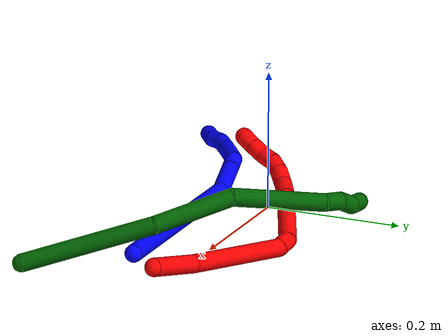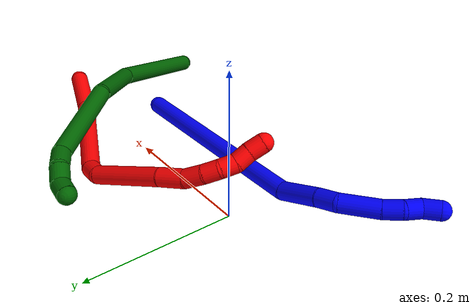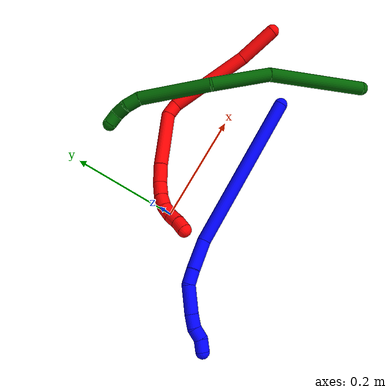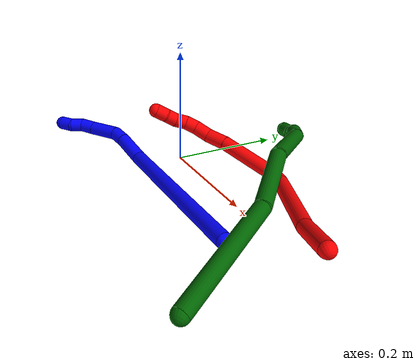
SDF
<sdf version="1.7">
 <world name="default">
  <model name="1">
   <static>0</static>
   <link name="1">
    <collision name="collision-cylinder-e_1_1_4">
     <pose>-0.093736 -0.003088 -0.113009 3.11428 -0.692261 -3.06588</pose>
     <geometry><cylinder><radius>0.0125</radius><length>0.293713</length></cylinder></geometry>
     <surface>
      <friction><ode><mu>1.16</mu><mu2>1.16</mu2><slip1>0</slip1><slip2>0</slip2></ode></friction>
      <contact><ode><kp>1e+06</kp><kd>1</kd><max_vel>0</max_vel><min_depth>0.001</min_depth></ode></contact>
     </surface>
    </collision>
    <visual name="visual-cylinder-e_1_1_4">
     <pose>-0.093736 -0.003088 -0.113009 3.11428 -0.692261 -3.06588</pose>
     <geometry><cylinder><radius>0.0125</radius><length>0.293713</length></cylinder></geometry>
     <material><ambient>0 0 1 1</ambient></material>
    </visual>
    <collision name="collision-cylinder-e_2_4_5">
     <pose>-0.211176 -0.001875 -0.241875 -2.87675 -0.964704 2.64337</pose>
     <geometry><cylinder><radius>0.0125</radius><length>0.057684</length></cylinder></geometry>
     <surface>
      <friction><ode><mu>1.16</mu><mu2>1.16</mu2><slip1>0</slip1><slip2>0</slip2></ode></friction>
      <contact><ode><kp>1e+06</kp><kd>1</kd><max_vel>0</max_vel><min_depth>0.001</min_depth></ode></contact>
     </surface>
    </collision>
    <visual name="visual-cylinder-e_2_4_5">
     <pose>-0.211176 -0.001875 -0.241875 -2.87675 -0.964704 2.64337</pose>
     <geometry><cylinder><radius>0.0125</radius><length>0.057684</length></cylinder></geometry>
     <material><ambient>0 0 1 1</ambient></material>
    </visual>
    <collision name="collision-cylinder-e_3_5_6">
     <pose>-0.246309 0.002847 -0.265511 -3.08748 -0.97254 3.03929</pose>
     <geometry><cylinder><radius>0.0125</radius><length>0.027662</length></cylinder></geometry>
     <surface>
      <friction><ode><mu>1.16</mu><mu2>1.16</mu2><slip1>0</slip1><slip2>0</slip2></ode></friction>
      <contact><ode><kp>1e+06</kp><kd>1</kd><max_vel>0</max_vel><min_depth>0.001</min_depth></ode></contact>
     </surface>
    </collision>
    <visual name="visual-cylinder-e_3_5_6">
     <pose>-0.246309 0.002847 -0.265511 -3.08748 -0.97254 3.03929</pose>
     <geometry><cylinder><radius>0.0125</radius><length>0.027662</length></cylinder></geometry>
     <material><ambient>0 0 1 1</ambient></material>
    </visual>
    <collision name="collision-cylinder-e_4_6_7">
     <pose>-0.281293 -0.004279 -0.280848 2.35694 -1.14503 -2.00014</pose>
     <geometry><cylinder><radius>0.0125</radius><length>0.051726</length></cylinder></geometry>
     <surface>
      <friction><ode><mu>1.16</mu><mu2>1.16</mu2><slip1>0</slip1><slip2>0</slip2></ode></friction>
      <contact><ode><kp>1e+06</kp><kd>1</kd><max_vel>0</max_vel><min_depth>0.001</min_depth></ode></contact>
     </surface>
    </collision>
    <visual name="visual-cylinder-e_4_6_7">
     <pose>-0.281293 -0.004279 -0.280848 2.35694 -1.14503 -2.00014</pose>
     <geometry><cylinder><radius>0.0125</radius><length>0.051726</length></cylinder></geometry>
     <material><ambient>0 0 1 1</ambient></material>
    </visual>
    <collision name="collision-cylinder-e_5_7_8">
     <pose>-0.316843 -0.014987 -0.29062 2.18174 -1.25968 -1.90128</pose>
     <geometry><cylinder><radius>0.0125</radius><length>0.025202</length></cylinder></geometry>
     <surface>
      <friction><ode><mu>1.16</mu><mu2>1.16</mu2><slip1>0</slip1><slip2>0</slip2></ode></friction>
      <contact><ode><kp>1e+06</kp><kd>1</kd><max_vel>0</max_vel><min_depth>0.001</min_depth></ode></contact>
     </surface>
    </collision>
    <visual name="visual-cylinder-e_5_7_8">
     <pose>-0.316843 -0.014987 -0.29062 2.18174 -1.25968 -1.90128</pose>
     <geometry><cylinder><radius>0.0125</radius><length>0.025202</length></cylinder></geometry>
     <material><ambient>0 0 1 1</ambient></material>
    </visual>
    <collision name="collision-cylinder-e_6_8_9">
     <pose>-0.338213 -0.023264 -0.291563 1.3276 -1.05846 -0.858152</pose>
     <geometry><cylinder><radius>0.0125</radius><length>0.021511</length></cylinder></geometry>
     <surface>
      <friction><ode><mu>1.16</mu><mu2>1.16</mu2><slip1>0</slip1><slip2>0</slip2></ode></friction>
      <contact><ode><kp>1e+06</kp><kd>1</kd><max_vel>0</max_vel><min_depth>0.001</min_depth></ode></contact>
     </surface>
    </collision>
    <visual name="visual-cylinder-e_6_8_9">
     <pose>-0.338213 -0.023264 -0.291563 1.3276 -1.05846 -0.858152</pose>
     <geometry><cylinder><radius>0.0125</radius><length>0.021511</length></cylinder></geometry>
     <material><ambient>0 0 1 1</ambient></material>
    </visual>
    <collision name="collision-cylinder-e_7_9_2">
     <pose>-0.357963 -0.03167 -0.293141 2.28436 -1.17377 -1.93758</pose>
     <geometry><cylinder><radius>0.0125</radius><length>0.022501</length></cylinder></geometry>
     <surface>
      <friction><ode><mu>1.16</mu><mu2>1.16</mu2><slip1>0</slip1><slip2>0</slip2></ode></friction>
      <contact><ode><kp>1e+06</kp><kd>1</kd><max_vel>0</max_vel><min_depth>0.001</min_depth></ode></contact>
     </surface>
    </collision>
    <visual name="visual-cylinder-e_7_9_2">
     <pose>-0.357963 -0.03167 -0.293141 2.28436 -1.17377 -1.93758</pose>
     <geometry><cylinder><radius>0.0125</radius><length>0.022501</length></cylinder></geometry>
     <material><ambient>0 0 1 1</ambient></material>
    </visual>
    <collision name="collision-sphere-2">
     <pose>-0.368339 -0.034959 -0.295988 0 -0 0</pose>
     <geometry><sphere><radius>0.0125</radius></sphere></geometry>
     <surface>
      <friction><ode><mu>1.16</mu><mu2>1.16</mu2><slip1>0</slip1><slip2>0</slip2></ode></friction>
      <contact><ode><kp>1e+06</kp><kd>1</kd><max_vel>0</max_vel><min_depth>0.001</min_depth></ode></contact>
     </surface>
    </collision>
    <visual name="visual-sphere-2">
     <pose>-0.368339 -0.034959 -0.295988 0 -0 0</pose>
     <geometry><sphere><radius>0.0125</radius></sphere></geometry>
     <material><ambient>0 0 1 1</ambient></material>
    </visual>
    <collision name="collision-sphere-9">
     <pose>-0.347587 -0.028381 -0.290293 0 -0 0</pose>
     <geometry><sphere><radius>0.0125</radius></sphere></geometry>
     <surface>
      <friction><ode><mu>1.16</mu><mu2>1.16</mu2><slip1>0</slip1><slip2>0</slip2></ode></friction>
      <contact><ode><kp>1e+06</kp><kd>1</kd><max_vel>0</max_vel><min_depth>0.001</min_depth></ode></contact>
     </surface>
    </collision>
    <visual name="visual-sphere-9">
     <pose>-0.347587 -0.028381 -0.290293 0 -0 0</pose>
     <geometry><sphere><radius>0.0125</radius></sphere></geometry>
     <material><ambient>0 0 1 1</ambient></material>
    </visual>
    <collision name="collision-sphere-4">
     <pose>-0.187471 -0.006176 -0.226018 0 -0 0</pose>
     <geometry><sphere><radius>0.0125</radius></sphere></geometry>
     <surface>
      <friction><ode><mu>1.16</mu><mu2>1.16</mu2><slip1>0</slip1><slip2>0</slip2></ode></friction>
      <contact><ode><kp>1e+06</kp><kd>1</kd><max_vel>0</max_vel><min_depth>0.001</min_depth></ode></contact>
     </surface>
    </collision>
    <visual name="visual-sphere-4">
     <pose>-0.187471 -0.006176 -0.226018 0 -0 0</pose>
     <geometry><sphere><radius>0.0125</radius></sphere></geometry>
     <material><ambient>0 0 1 1</ambient></material>
    </visual>
    <collision name="collision-sphere-1">
     <geometry><sphere><radius>0.0125</radius></sphere></geometry>
     <surface>
      <friction><ode><mu>1.16</mu><mu2>1.16</mu2><slip1>0</slip1><slip2>0</slip2></ode></friction>
      <contact><ode><kp>1e+06</kp><kd>1</kd><max_vel>0</max_vel><min_depth>0.001</min_depth></ode></contact>
     </surface>
    </collision>
    <visual name="visual-sphere-1">
     <geometry><sphere><radius>0.0125</radius></sphere></geometry>
     <material><ambient>0 0 1 1</ambient></material>
    </visual>
    <collision name="collision-sphere-8">
     <pose>-0.328839 -0.018146 -0.292832 0 -0 0</pose>
     <geometry><sphere><radius>0.0125</radius></sphere></geometry>
     <surface>
      <friction><ode><mu>1.16</mu><mu2>1.16</mu2><slip1>0</slip1><slip2>0</slip2></ode></friction>
      <contact><ode><kp>1e+06</kp><kd>1</kd><max_vel>0</max_vel><min_depth>0.001</min_depth></ode></contact>
     </surface>
    </collision>
    <visual name="visual-sphere-8">
     <pose>-0.328839 -0.018146 -0.292832 0 -0 0</pose>
     <geometry><sphere><radius>0.0125</radius></sphere></geometry>
     <material><ambient>0 0 1 1</ambient></material>
    </visual>
    <collision name="collision-sphere-5">
     <pose>-0.23488 0.002426 -0.257732 0 -0 0</pose>
     <geometry><sphere><radius>0.0125</radius></sphere></geometry>
     <surface>
      <friction><ode><mu>1.16</mu><mu2>1.16</mu2><slip1>0</slip1><slip2>0</slip2></ode></friction>
      <contact><ode><kp>1e+06</kp><kd>1</kd><max_vel>0</max_vel><min_depth>0.001</min_depth></ode></contact>
     </surface>
    </collision>
    <visual name="visual-sphere-5">
     <pose>-0.23488 0.002426 -0.257732 0 -0 0</pose>
     <geometry><sphere><radius>0.0125</radius></sphere></geometry>
     <material><ambient>0 0 1 1</ambient></material>
    </visual>
    <collision name="collision-sphere-6">
     <pose>-0.257738 0.003268 -0.273289 0 -0 0</pose>
     <geometry><sphere><radius>0.0125</radius></sphere></geometry>
     <surface>
      <friction><ode><mu>1.16</mu><mu2>1.16</mu2><slip1>0</slip1><slip2>0</slip2></ode></friction>
      <contact><ode><kp>1e+06</kp><kd>1</kd><max_vel>0</max_vel><min_depth>0.001</min_depth></ode></contact>
     </surface>
    </collision>
    <visual name="visual-sphere-6">
     <pose>-0.257738 0.003268 -0.273289 0 -0 0</pose>
     <geometry><sphere><radius>0.0125</radius></sphere></geometry>
     <material><ambient>0 0 1 1</ambient></material>
    </visual>
    <collision name="collision-sphere-7">
     <pose>-0.304847 -0.011827 -0.288407 0 -0 0</pose>
     <geometry><sphere><radius>0.0125</radius></sphere></geometry>
     <surface>
      <friction><ode><mu>1.16</mu><mu2>1.16</mu2><slip1>0</slip1><slip2>0</slip2></ode></friction>
      <contact><ode><kp>1e+06</kp><kd>1</kd><max_vel>0</max_vel><min_depth>0.001</min_depth></ode></contact>
     </surface>
    </collision>
    <visual name="visual-sphere-7">
     <pose>-0.304847 -0.011827 -0.288407 0 -0 0</pose>
     <geometry><sphere><radius>0.0125</radius></sphere></geometry>
     <material><ambient>0 0 1 1</ambient></material>
    </visual>
    <inertial>
     <pose>-0.168783 -0.005497 -0.178417 0 -0 0</pose>
     <mass>0.5</mass>
     <inertia>
      <ixx>-0.001797</ixx>
      <ixy>0</ixy>
      <ixz>0</ixz>
      <iyy>0.002028</iyy>
      <iyz>0</iyz>
      <izz>0.001415</izz>
     </inertia>
    </inertial>
   </link>
   <pose>0.283133 -0.073334 0.011512 1.22012 0.418722 0.816906</pose>
  </model>
  <model name="2">
   <static>0</static>
   <link name="2">
    <collision name="collision-cylinder-e_1_1_4">
     <pose>-0.001713 -0.025218 -0.027058 2.39136 -0.046279 -0.117416</pose>
     <geometry><cylinder><radius>0.0125</radius><length>0.074054</length></cylinder></geometry>
     <surface>
      <friction><ode><mu>1.16</mu><mu2>1.16</mu2><slip1>0</slip1><slip2>0</slip2></ode></friction>
      <contact><ode><kp>1e+06</kp><kd>1</kd><max_vel>0</max_vel><min_depth>0.001</min_depth></ode></contact>
     </surface>
    </collision>
    <visual name="visual-cylinder-e_1_1_4">
     <pose>-0.001713 -0.025218 -0.027058 2.39136 -0.046279 -0.117416</pose>
     <geometry><cylinder><radius>0.0125</radius><length>0.074054</length></cylinder></geometry>
     <material><ambient>1 0 0 1</ambient></material>
    </visual>
    <collision name="collision-cylinder-e_2_4_5">
     <pose>0.002891 -0.097958 -0.113274 2.46485 0.083058 0.235072</pose>
     <geometry><cylinder><radius>0.0125</radius><length>0.152289</length></cylinder></geometry>
     <surface>
      <friction><ode><mu>1.16</mu><mu2>1.16</mu2><slip1>0</slip1><slip2>0</slip2></ode></friction>
      <contact><ode><kp>1e+06</kp><kd>1</kd><max_vel>0</max_vel><min_depth>0.001</min_depth></ode></contact>
     </surface>
    </collision>
    <visual name="visual-cylinder-e_2_4_5">
     <pose>0.002891 -0.097958 -0.113274 2.46485 0.083058 0.235072</pose>
     <geometry><cylinder><radius>0.0125</radius><length>0.152289</length></cylinder></geometry>
     <material><ambient>1 0 0 1</ambient></material>
    </visual>
    <collision name="collision-cylinder-e_3_5_6">
     <pose>0.007115 -0.149519 -0.183977 2.805 -0.169557 -0.927579</pose>
     <geometry><cylinder><radius>0.0125</radius><length>0.024816</length></cylinder></geometry>
     <surface>
      <friction><ode><mu>1.16</mu><mu2>1.16</mu2><slip1>0</slip1><slip2>0</slip2></ode></friction>
      <contact><ode><kp>1e+06</kp><kd>1</kd><max_vel>0</max_vel><min_depth>0.001</min_depth></ode></contact>
     </surface>
    </collision>
    <visual name="visual-cylinder-e_3_5_6">
     <pose>0.007115 -0.149519 -0.183977 2.805 -0.169557 -0.927579</pose>
     <geometry><cylinder><radius>0.0125</radius><length>0.024816</length></cylinder></geometry>
     <material><ambient>1 0 0 1</ambient></material>
    </visual>
    <collision name="collision-cylinder-e_4_6_7">
     <pose>-0.022349 -0.152012 -0.23982 -3.10671 -0.553157 3.01886</pose>
     <geometry><cylinder><radius>0.0125</radius><length>0.10419</length></cylinder></geometry>
     <surface>
      <friction><ode><mu>1.16</mu><mu2>1.16</mu2><slip1>0</slip1><slip2>0</slip2></ode></friction>
      <contact><ode><kp>1e+06</kp><kd>1</kd><max_vel>0</max_vel><min_depth>0.001</min_depth></ode></contact>
     </surface>
    </collision>
    <visual name="visual-cylinder-e_4_6_7">
     <pose>-0.022349 -0.152012 -0.23982 -3.10671 -0.553157 3.01886</pose>
     <geometry><cylinder><radius>0.0125</radius><length>0.10419</length></cylinder></geometry>
     <material><ambient>1 0 0 1</ambient></material>
    </visual>
    <collision name="collision-cylinder-e_5_7_8">
     <pose>-0.060815 -0.150325 -0.297715 -3.13121 -0.684482 3.11245</pose>
     <geometry><cylinder><radius>0.0125</radius><length>0.035101</length></cylinder></geometry>
     <surface>
      <friction><ode><mu>1.16</mu><mu2>1.16</mu2><slip1>0</slip1><slip2>0</slip2></ode></friction>
      <contact><ode><kp>1e+06</kp><kd>1</kd><max_vel>0</max_vel><min_depth>0.001</min_depth></ode></contact>
     </surface>
    </collision>
    <visual name="visual-cylinder-e_5_7_8">
     <pose>-0.060815 -0.150325 -0.297715 -3.13121 -0.684482 3.11245</pose>
     <geometry><cylinder><radius>0.0125</radius><length>0.035101</length></cylinder></geometry>
     <material><ambient>1 0 0 1</ambient></material>
    </visual>
    <collision name="collision-cylinder-e_6_8_9">
     <pose>-0.079738 -0.14646 -0.321669 -2.79638 -0.618115 2.14201</pose>
     <geometry><cylinder><radius>0.0125</radius><length>0.02701</length></cylinder></geometry>
     <surface>
      <friction><ode><mu>1.16</mu><mu2>1.16</mu2><slip1>0</slip1><slip2>0</slip2></ode></friction>
      <contact><ode><kp>1e+06</kp><kd>1</kd><max_vel>0</max_vel><min_depth>0.001</min_depth></ode></contact>
     </surface>
    </collision>
    <visual name="visual-cylinder-e_6_8_9">
     <pose>-0.079738 -0.14646 -0.321669 -2.79638 -0.618115 2.14201</pose>
     <geometry><cylinder><radius>0.0125</radius><length>0.02701</length></cylinder></geometry>
     <material><ambient>1 0 0 1</ambient></material>
    </visual>
    <collision name="collision-cylinder-e_7_9_10">
     <pose>-0.094698 -0.13892 -0.33876 -2.62611 -0.744712 1.95421</pose>
     <geometry><cylinder><radius>0.0125</radius><length>0.021053</length></cylinder></geometry>
     <surface>
      <friction><ode><mu>1.16</mu><mu2>1.16</mu2><slip1>0</slip1><slip2>0</slip2></ode></friction>
      <contact><ode><kp>1e+06</kp><kd>1</kd><max_vel>0</max_vel><min_depth>0.001</min_depth></ode></contact>
     </surface>
    </collision>
    <visual name="visual-cylinder-e_7_9_10">
     <pose>-0.094698 -0.13892 -0.33876 -2.62611 -0.744712 1.95421</pose>
     <geometry><cylinder><radius>0.0125</radius><length>0.021053</length></cylinder></geometry>
     <material><ambient>1 0 0 1</ambient></material>
    </visual>
    <collision name="collision-cylinder-e_8_10_11">
     <pose>-0.110325 -0.130772 -0.349237 -2.28331 -0.977613 1.72065</pose>
     <geometry><cylinder><radius>0.0125</radius><length>0.020483</length></cylinder></geometry>
     <surface>
      <friction><ode><mu>1.16</mu><mu2>1.16</mu2><slip1>0</slip1><slip2>0</slip2></ode></friction>
      <contact><ode><kp>1e+06</kp><kd>1</kd><max_vel>0</max_vel><min_depth>0.001</min_depth></ode></contact>
     </surface>
    </collision>
    <visual name="visual-cylinder-e_8_10_11">
     <pose>-0.110325 -0.130772 -0.349237 -2.28331 -0.977613 1.72065</pose>
     <geometry><cylinder><radius>0.0125</radius><length>0.020483</length></cylinder></geometry>
     <material><ambient>1 0 0 1</ambient></material>
    </visual>
    <collision name="collision-cylinder-e_9_11_12">
     <pose>-0.125112 -0.119125 -0.356076 -1.97125 -0.670197 0.967783</pose>
     <geometry><cylinder><radius>0.0125</radius><length>0.02027</length></cylinder></geometry>
     <surface>
      <friction><ode><mu>1.16</mu><mu2>1.16</mu2><slip1>0</slip1><slip2>0</slip2></ode></friction>
      <contact><ode><kp>1e+06</kp><kd>1</kd><max_vel>0</max_vel><min_depth>0.001</min_depth></ode></contact>
     </surface>
    </collision>
    <visual name="visual-cylinder-e_9_11_12">
     <pose>-0.125112 -0.119125 -0.356076 -1.97125 -0.670197 0.967783</pose>
     <geometry><cylinder><radius>0.0125</radius><length>0.02027</length></cylinder></geometry>
     <material><ambient>1 0 0 1</ambient></material>
    </visual>
    <collision name="collision-cylinder-e_10_12_2">
     <pose>-0.138441 -0.105514 -0.363455 -2.16802 -0.745753 1.27297</pose>
     <geometry><cylinder><radius>0.0125</radius><length>0.020734</length></cylinder></geometry>
     <surface>
      <friction><ode><mu>1.16</mu><mu2>1.16</mu2><slip1>0</slip1><slip2>0</slip2></ode></friction>
      <contact><ode><kp>1e+06</kp><kd>1</kd><max_vel>0</max_vel><min_depth>0.001</min_depth></ode></contact>
     </surface>
    </collision>
    <visual name="visual-cylinder-e_10_12_2">
     <pose>-0.138441 -0.105514 -0.363455 -2.16802 -0.745753 1.27297</pose>
     <geometry><cylinder><radius>0.0125</radius><length>0.020734</length></cylinder></geometry>
     <material><ambient>1 0 0 1</ambient></material>
    </visual>
    <collision name="collision-sphere-2">
     <pose>-0.145475 -0.099217 -0.367737 0 -0 0</pose>
     <geometry><sphere><radius>0.0125</radius></sphere></geometry>
     <surface>
      <friction><ode><mu>1.16</mu><mu2>1.16</mu2><slip1>0</slip1><slip2>0</slip2></ode></friction>
      <contact><ode><kp>1e+06</kp><kd>1</kd><max_vel>0</max_vel><min_depth>0.001</min_depth></ode></contact>
     </surface>
    </collision>
    <visual name="visual-sphere-2">
     <pose>-0.145475 -0.099217 -0.367737 0 -0 0</pose>
     <geometry><sphere><radius>0.0125</radius></sphere></geometry>
     <material><ambient>1 0 0 1</ambient></material>
    </visual>
    <collision name="collision-sphere-12">
     <pose>-0.131407 -0.111811 -0.359172 0 -0 0</pose>
     <geometry><sphere><radius>0.0125</radius></sphere></geometry>
     <surface>
      <friction><ode><mu>1.16</mu><mu2>1.16</mu2><slip1>0</slip1><slip2>0</slip2></ode></friction>
      <contact><ode><kp>1e+06</kp><kd>1</kd><max_vel>0</max_vel><min_depth>0.001</min_depth></ode></contact>
     </surface>
    </collision>
    <visual name="visual-sphere-12">
     <pose>-0.131407 -0.111811 -0.359172 0 -0 0</pose>
     <geometry><sphere><radius>0.0125</radius></sphere></geometry>
     <material><ambient>1 0 0 1</ambient></material>
    </visual>
    <collision name="collision-sphere-11">
     <pose>-0.118817 -0.12644 -0.352979 0 -0 0</pose>
     <geometry><sphere><radius>0.0125</radius></sphere></geometry>
     <surface>
      <friction><ode><mu>1.16</mu><mu2>1.16</mu2><slip1>0</slip1><slip2>0</slip2></ode></friction>
      <contact><ode><kp>1e+06</kp><kd>1</kd><max_vel>0</max_vel><min_depth>0.001</min_depth></ode></contact>
     </surface>
    </collision>
    <visual name="visual-sphere-11">
     <pose>-0.118817 -0.12644 -0.352979 0 -0 0</pose>
     <geometry><sphere><radius>0.0125</radius></sphere></geometry>
     <material><ambient>1 0 0 1</ambient></material>
    </visual>
    <collision name="collision-sphere-10">
     <pose>-0.101833 -0.135104 -0.345494 0 -0 0</pose>
     <geometry><sphere><radius>0.0125</radius></sphere></geometry>
     <surface>
      <friction><ode><mu>1.16</mu><mu2>1.16</mu2><slip1>0</slip1><slip2>0</slip2></ode></friction>
      <contact><ode><kp>1e+06</kp><kd>1</kd><max_vel>0</max_vel><min_depth>0.001</min_depth></ode></contact>
     </surface>
    </collision>
    <visual name="visual-sphere-10">
     <pose>-0.101833 -0.135104 -0.345494 0 -0 0</pose>
     <geometry><sphere><radius>0.0125</radius></sphere></geometry>
     <material><ambient>1 0 0 1</ambient></material>
    </visual>
    <collision name="collision-sphere-9">
     <pose>-0.087564 -0.142735 -0.332026 0 -0 0</pose>
     <geometry><sphere><radius>0.0125</radius></sphere></geometry>
     <surface>
      <friction><ode><mu>1.16</mu><mu2>1.16</mu2><slip1>0</slip1><slip2>0</slip2></ode></friction>
      <contact><ode><kp>1e+06</kp><kd>1</kd><max_vel>0</max_vel><min_depth>0.001</min_depth></ode></contact>
     </surface>
    </collision>
    <visual name="visual-sphere-9">
     <pose>-0.087564 -0.142735 -0.332026 0 -0 0</pose>
     <geometry><sphere><radius>0.0125</radius></sphere></geometry>
     <material><ambient>1 0 0 1</ambient></material>
    </visual>
    <collision name="collision-sphere-4">
     <pose>-0.003426 -0.050437 -0.054115 0 -0 0</pose>
     <geometry><sphere><radius>0.0125</radius></sphere></geometry>
     <surface>
      <friction><ode><mu>1.16</mu><mu2>1.16</mu2><slip1>0</slip1><slip2>0</slip2></ode></friction>
      <contact><ode><kp>1e+06</kp><kd>1</kd><max_vel>0</max_vel><min_depth>0.001</min_depth></ode></contact>
     </surface>
    </collision>
    <visual name="visual-sphere-4">
     <pose>-0.003426 -0.050437 -0.054115 0 -0 0</pose>
     <geometry><sphere><radius>0.0125</radius></sphere></geometry>
     <material><ambient>1 0 0 1</ambient></material>
    </visual>
    <collision name="collision-sphere-1">
     <geometry><sphere><radius>0.0125</radius></sphere></geometry>
     <surface>
      <friction><ode><mu>1.16</mu><mu2>1.16</mu2><slip1>0</slip1><slip2>0</slip2></ode></friction>
      <contact><ode><kp>1e+06</kp><kd>1</kd><max_vel>0</max_vel><min_depth>0.001</min_depth></ode></contact>
     </surface>
    </collision>
    <visual name="visual-sphere-1">
     <geometry><sphere><radius>0.0125</radius></sphere></geometry>
     <material><ambient>1 0 0 1</ambient></material>
    </visual>
    <collision name="collision-sphere-8">
     <pose>-0.071912 -0.150184 -0.311312 0 -0 0</pose>
     <geometry><sphere><radius>0.0125</radius></sphere></geometry>
     <surface>
      <friction><ode><mu>1.16</mu><mu2>1.16</mu2><slip1>0</slip1><slip2>0</slip2></ode></friction>
      <contact><ode><kp>1e+06</kp><kd>1</kd><max_vel>0</max_vel><min_depth>0.001</min_depth></ode></contact>
     </surface>
    </collision>
    <visual name="visual-sphere-8">
     <pose>-0.071912 -0.150184 -0.311312 0 -0 0</pose>
     <geometry><sphere><radius>0.0125</radius></sphere></geometry>
     <material><ambient>1 0 0 1</ambient></material>
    </visual>
    <collision name="collision-sphere-5">
     <pose>0.009208 -0.145479 -0.172433 0 -0 0</pose>
     <geometry><sphere><radius>0.0125</radius></sphere></geometry>
     <surface>
      <friction><ode><mu>1.16</mu><mu2>1.16</mu2><slip1>0</slip1><slip2>0</slip2></ode></friction>
      <contact><ode><kp>1e+06</kp><kd>1</kd><max_vel>0</max_vel><min_depth>0.001</min_depth></ode></contact>
     </surface>
    </collision>
    <visual name="visual-sphere-5">
     <pose>0.009208 -0.145479 -0.172433 0 -0 0</pose>
     <geometry><sphere><radius>0.0125</radius></sphere></geometry>
     <material><ambient>1 0 0 1</ambient></material>
    </visual>
    <collision name="collision-sphere-6">
     <pose>0.005021 -0.153558 -0.195521 0 -0 0</pose>
     <geometry><sphere><radius>0.0125</radius></sphere></geometry>
     <surface>
      <friction><ode><mu>1.16</mu><mu2>1.16</mu2><slip1>0</slip1><slip2>0</slip2></ode></friction>
      <contact><ode><kp>1e+06</kp><kd>1</kd><max_vel>0</max_vel><min_depth>0.001</min_depth></ode></contact>
     </surface>
    </collision>
    <visual name="visual-sphere-6">
     <pose>0.005021 -0.153558 -0.195521 0 -0 0</pose>
     <geometry><sphere><radius>0.0125</radius></sphere></geometry>
     <material><ambient>1 0 0 1</ambient></material>
    </visual>
    <collision name="collision-sphere-7">
     <pose>-0.049718 -0.150467 -0.284119 0 -0 0</pose>
     <geometry><sphere><radius>0.0125</radius></sphere></geometry>
     <surface>
      <friction><ode><mu>1.16</mu><mu2>1.16</mu2><slip1>0</slip1><slip2>0</slip2></ode></friction>
      <contact><ode><kp>1e+06</kp><kd>1</kd><max_vel>0</max_vel><min_depth>0.001</min_depth></ode></contact>
     </surface>
    </collision>
    <visual name="visual-sphere-7">
     <pose>-0.049718 -0.150467 -0.284119 0 -0 0</pose>
     <geometry><sphere><radius>0.0125</radius></sphere></geometry>
     <material><ambient>1 0 0 1</ambient></material>
    </visual>
    <inertial>
     <pose>-0.031574 -0.111544 -0.193967 0 -0 0</pose>
     <mass>0.5</mass>
     <inertia>
      <ixx>0.00031</ixx>
      <ixy>0</ixy>
      <ixz>0</ixz>
      <iyy>-7.2e-05</iyy>
      <iyz>0</iyz>
      <izz>0.000215</izz>
     </inertia>
    </inertial>
   </link>
   <pose>0.3885 0.008828 0.039139 2.13095 -0.327764 1.2551</pose>
  </model>
  <model name="6">
   <static>0</static>
   <link name="6">
    <collision name="collision-cylinder-e_1_1_4">
     <pose>-0.016967 -0.012367 -0.089813 3.00476 -0.185006 -1.86917</pose>
     <geometry><cylinder><radius>0.0125</radius><length>0.184469</length></cylinder></geometry>
     <surface>
      <friction><ode><mu>1.16</mu><mu2>1.16</mu2><slip1>0</slip1><slip2>0</slip2></ode></friction>
      <contact><ode><kp>1e+06</kp><kd>1</kd><max_vel>0</max_vel><min_depth>0.001</min_depth></ode></contact>
     </surface>
    </collision>
    <visual name="visual-cylinder-e_1_1_4">
     <pose>-0.016967 -0.012367 -0.089813 3.00476 -0.185006 -1.86917</pose>
     <geometry><cylinder><radius>0.0125</radius><length>0.184469</length></cylinder></geometry>
     <material><ambient>0 0.392157 0.003922 1</ambient></material>
    </visual>
    <collision name="collision-cylinder-e_2_4_5">
     <pose>-0.0329 -0.020101 -0.235532 -3.05891 0.018424 -0.438272</pose>
     <geometry><cylinder><radius>0.0125</radius><length>0.112214</length></cylinder></geometry>
     <surface>
      <friction><ode><mu>1.16</mu><mu2>1.16</mu2><slip1>0</slip1><slip2>0</slip2></ode></friction>
      <contact><ode><kp>1e+06</kp><kd>1</kd><max_vel>0</max_vel><min_depth>0.001</min_depth></ode></contact>
     </surface>
    </collision>
    <visual name="visual-cylinder-e_2_4_5">
     <pose>-0.0329 -0.020101 -0.235532 -3.05891 0.018424 -0.438272</pose>
     <geometry><cylinder><radius>0.0125</radius><length>0.112214</length></cylinder></geometry>
     <material><ambient>0 0.392157 0.003922 1</ambient></material>
    </visual>
    <collision name="collision-cylinder-e_3_5_6">
     <pose>-0.050091 0.005363 -0.3504 -2.80198 -0.283576 1.38855</pose>
     <geometry><cylinder><radius>0.0125</radius><length>0.130272</length></cylinder></geometry>
     <surface>
      <friction><ode><mu>1.16</mu><mu2>1.16</mu2><slip1>0</slip1><slip2>0</slip2></ode></friction>
      <contact><ode><kp>1e+06</kp><kd>1</kd><max_vel>0</max_vel><min_depth>0.001</min_depth></ode></contact>
     </surface>
    </collision>
    <visual name="visual-cylinder-e_3_5_6">
     <pose>-0.050091 0.005363 -0.3504 -2.80198 -0.283576 1.38855</pose>
     <geometry><cylinder><radius>0.0125</radius><length>0.130272</length></cylinder></geometry>
     <material><ambient>0 0.392157 0.003922 1</ambient></material>
    </visual>
    <collision name="collision-cylinder-e_4_6_7">
     <pose>-0.067972 0.032877 -0.421148 -2.62581 0.025305 -0.095869</pose>
     <geometry><cylinder><radius>0.0125</radius><length>0.027104</length></cylinder></geometry>
     <surface>
      <friction><ode><mu>1.16</mu><mu2>1.16</mu2><slip1>0</slip1><slip2>0</slip2></ode></friction>
      <contact><ode><kp>1e+06</kp><kd>1</kd><max_vel>0</max_vel><min_depth>0.001</min_depth></ode></contact>
     </surface>
    </collision>
    <visual name="visual-cylinder-e_4_6_7">
     <pose>-0.067972 0.032877 -0.421148 -2.62581 0.025305 -0.095869</pose>
     <geometry><cylinder><radius>0.0125</radius><length>0.027104</length></cylinder></geometry>
     <material><ambient>0 0.392157 0.003922 1</ambient></material>
    </visual>
    <collision name="collision-cylinder-e_5_7_8">
     <pose>-0.069178 0.048568 -0.440748 -2.28528 -0.129134 0.281467</pose>
     <geometry><cylinder><radius>0.0125</radius><length>0.024054</length></cylinder></geometry>
     <surface>
      <friction><ode><mu>1.16</mu><mu2>1.16</mu2><slip1>0</slip1><slip2>0</slip2></ode></friction>
      <contact><ode><kp>1e+06</kp><kd>1</kd><max_vel>0</max_vel><min_depth>0.001</min_depth></ode></contact>
     </surface>
    </collision>
    <visual name="visual-cylinder-e_5_7_8">
     <pose>-0.069178 0.048568 -0.440748 -2.28528 -0.129134 0.281467</pose>
     <geometry><cylinder><radius>0.0125</radius><length>0.024054</length></cylinder></geometry>
     <material><ambient>0 0.392157 0.003922 1</ambient></material>
    </visual>
    <collision name="collision-cylinder-e_6_8_2">
     <pose>-0.066687 0.064567 -0.455953 -2.38409 0.378082 -0.896276</pose>
     <geometry><cylinder><radius>0.0125</radius><length>0.021888</length></cylinder></geometry>
     <surface>
      <friction><ode><mu>1.16</mu><mu2>1.16</mu2><slip1>0</slip1><slip2>0</slip2></ode></friction>
      <contact><ode><kp>1e+06</kp><kd>1</kd><max_vel>0</max_vel><min_depth>0.001</min_depth></ode></contact>
     </surface>
    </collision>
    <visual name="visual-cylinder-e_6_8_2">
     <pose>-0.066687 0.064567 -0.455953 -2.38409 0.378082 -0.896276</pose>
     <geometry><cylinder><radius>0.0125</radius><length>0.021888</length></cylinder></geometry>
     <material><ambient>0 0.392157 0.003922 1</ambient></material>
    </visual>
    <collision name="collision-sphere-2">
     <pose>-0.062647 0.071555 -0.463343 0 -0 0</pose>
     <geometry><sphere><radius>0.0125</radius></sphere></geometry>
     <surface>
      <friction><ode><mu>1.16</mu><mu2>1.16</mu2><slip1>0</slip1><slip2>0</slip2></ode></friction>
      <contact><ode><kp>1e+06</kp><kd>1</kd><max_vel>0</max_vel><min_depth>0.001</min_depth></ode></contact>
     </surface>
    </collision>
    <visual name="visual-sphere-2">
     <pose>-0.062647 0.071555 -0.463343 0 -0 0</pose>
     <geometry><sphere><radius>0.0125</radius></sphere></geometry>
     <material><ambient>0 0.392157 0.003922 1</ambient></material>
    </visual>
    <collision name="collision-sphere-4">
     <pose>-0.033934 -0.024734 -0.179626 0 -0 0</pose>
     <geometry><sphere><radius>0.0125</radius></sphere></geometry>
     <surface>
      <friction><ode><mu>1.16</mu><mu2>1.16</mu2><slip1>0</slip1><slip2>0</slip2></ode></friction>
      <contact><ode><kp>1e+06</kp><kd>1</kd><max_vel>0</max_vel><min_depth>0.001</min_depth></ode></contact>
     </surface>
    </collision>
    <visual name="visual-sphere-4">
     <pose>-0.033934 -0.024734 -0.179626 0 -0 0</pose>
     <geometry><sphere><radius>0.0125</radius></sphere></geometry>
     <material><ambient>0 0.392157 0.003922 1</ambient></material>
    </visual>
    <collision name="collision-sphere-1">
     <geometry><sphere><radius>0.0125</radius></sphere></geometry>
     <surface>
      <friction><ode><mu>1.16</mu><mu2>1.16</mu2><slip1>0</slip1><slip2>0</slip2></ode></friction>
      <contact><ode><kp>1e+06</kp><kd>1</kd><max_vel>0</max_vel><min_depth>0.001</min_depth></ode></contact>
     </surface>
    </collision>
    <visual name="visual-sphere-1">
     <geometry><sphere><radius>0.0125</radius></sphere></geometry>
     <material><ambient>0 0.392157 0.003922 1</ambient></material>
    </visual>
    <collision name="collision-sphere-8">
     <pose>-0.070727 0.057578 -0.448563 0 -0 0</pose>
     <geometry><sphere><radius>0.0125</radius></sphere></geometry>
     <surface>
      <friction><ode><mu>1.16</mu><mu2>1.16</mu2><slip1>0</slip1><slip2>0</slip2></ode></friction>
      <contact><ode><kp>1e+06</kp><kd>1</kd><max_vel>0</max_vel><min_depth>0.001</min_depth></ode></contact>
     </surface>
    </collision>
    <visual name="visual-sphere-8">
     <pose>-0.070727 0.057578 -0.448563 0 -0 0</pose>
     <geometry><sphere><radius>0.0125</radius></sphere></geometry>
     <material><ambient>0 0.392157 0.003922 1</ambient></material>
    </visual>
    <collision name="collision-sphere-5">
     <pose>-0.031866 -0.015468 -0.291438 0 -0 0</pose>
     <geometry><sphere><radius>0.0125</radius></sphere></geometry>
     <surface>
      <friction><ode><mu>1.16</mu><mu2>1.16</mu2><slip1>0</slip1><slip2>0</slip2></ode></friction>
      <contact><ode><kp>1e+06</kp><kd>1</kd><max_vel>0</max_vel><min_depth>0.001</min_depth></ode></contact>
     </surface>
    </collision>
    <visual name="visual-sphere-5">
     <pose>-0.031866 -0.015468 -0.291438 0 -0 0</pose>
     <geometry><sphere><radius>0.0125</radius></sphere></geometry>
     <material><ambient>0 0.392157 0.003922 1</ambient></material>
    </visual>
    <collision name="collision-sphere-6">
     <pose>-0.068315 0.026195 -0.409363 0 -0 0</pose>
     <geometry><sphere><radius>0.0125</radius></sphere></geometry>
     <surface>
      <friction><ode><mu>1.16</mu><mu2>1.16</mu2><slip1>0</slip1><slip2>0</slip2></ode></friction>
      <contact><ode><kp>1e+06</kp><kd>1</kd><max_vel>0</max_vel><min_depth>0.001</min_depth></ode></contact>
     </surface>
    </collision>
    <visual name="visual-sphere-6">
     <pose>-0.068315 0.026195 -0.409363 0 -0 0</pose>
     <geometry><sphere><radius>0.0125</radius></sphere></geometry>
     <material><ambient>0 0.392157 0.003922 1</ambient></material>
    </visual>
    <collision name="collision-sphere-7">
     <pose>-0.067629 0.039558 -0.432933 0 -0 0</pose>
     <geometry><sphere><radius>0.0125</radius></sphere></geometry>
     <surface>
      <friction><ode><mu>1.16</mu><mu2>1.16</mu2><slip1>0</slip1><slip2>0</slip2></ode></friction>
      <contact><ode><kp>1e+06</kp><kd>1</kd><max_vel>0</max_vel><min_depth>0.001</min_depth></ode></contact>
     </surface>
    </collision>
    <visual name="visual-sphere-7">
     <pose>-0.067629 0.039558 -0.432933 0 -0 0</pose>
     <geometry><sphere><radius>0.0125</radius></sphere></geometry>
     <material><ambient>0 0.392157 0.003922 1</ambient></material>
    </visual>
    <inertial>
     <pose>-0.036626 -0.000731 -0.241282 0 -0 0</pose>
     <mass>0.5</mass>
     <inertia>
      <ixx>-0.000381</ixx>
      <ixy>0</ixy>
      <ixz>0</ixz>
      <iyy>-0.000329</iyy>
      <iyz>0</iyz>
      <izz>0.000108</izz>
     </inertia>
    </inertial>
   </link>
   <pose>0.386362 -0.188514 0.014604 -1.94103 -0.637322 -2.20652</pose>
  </model>
 </world>
</sdf>
